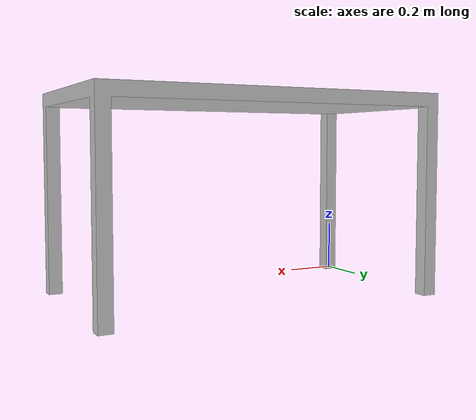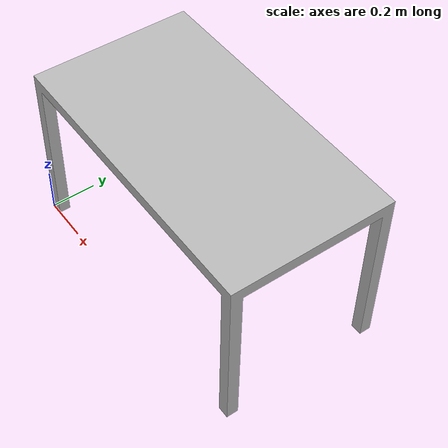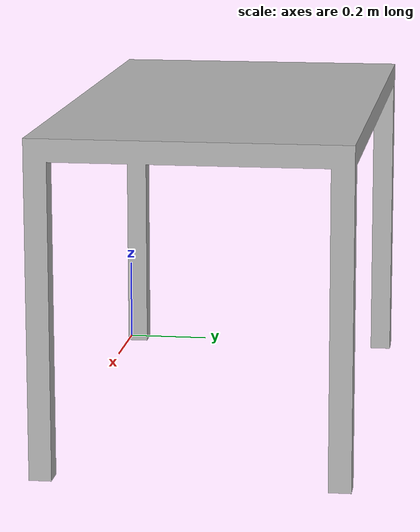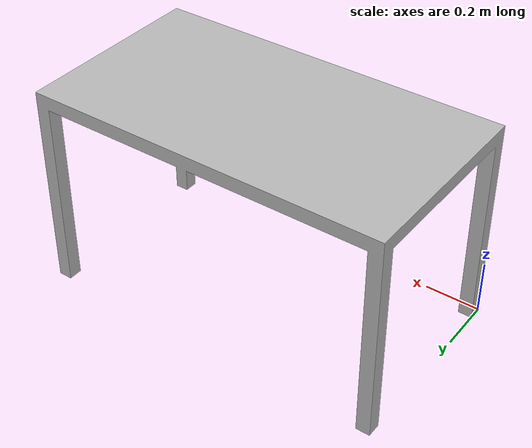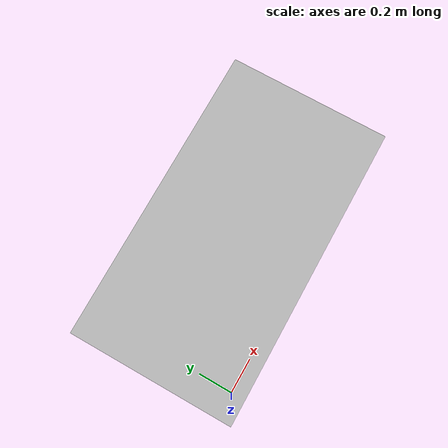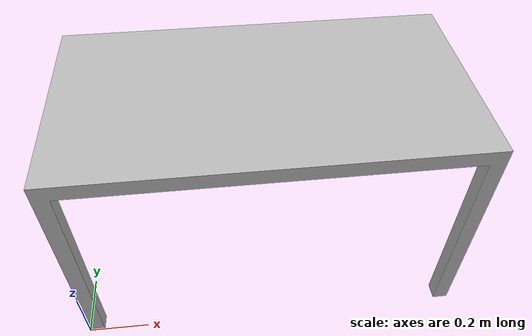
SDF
<?xml version="1.0" ?>
<sdf version="1.6">
  <model name="stolac1">
    <static>true</static>
    <link name="base_link">

      <visual name="visual">
        <geometry>
          <mesh>
            <uri>model://stolac1/meshes/crta_stolac1.STL</uri>
            <scale>0.001 0.001 0.001</scale>
          </mesh>
        </geometry>
      </visual>

      <collision name="collision">
       <pose>0.645 0.35 0.375 0 0 0</pose>
        <geometry>
         <box>
          <size>1.29 0.7 0.75</size> <!-- Prilagodi veličini stolca -->
         </box>
        </geometry>
       </collision>

    </link>
  </model>
</sdf>
